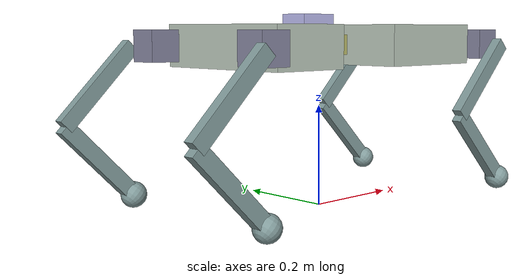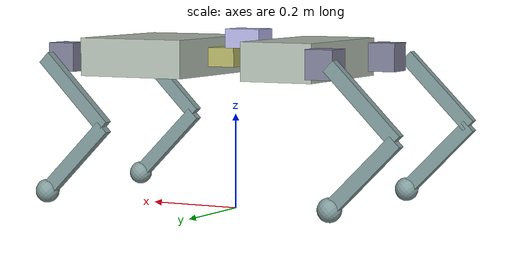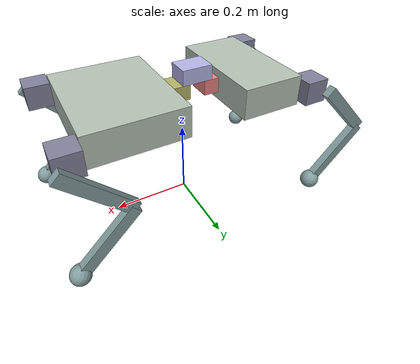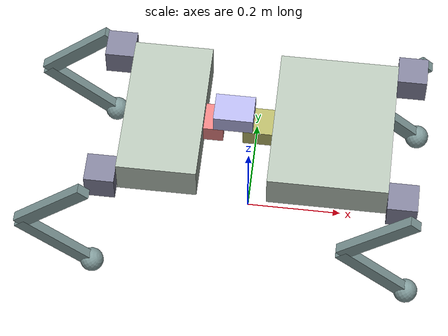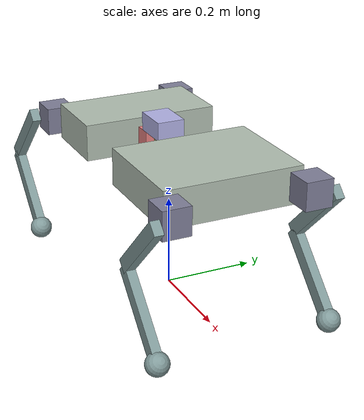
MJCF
<mujoco model="Stray">
  <compiler inertiafromgeom="false" angle="degree" eulerseq="xyz" meshdir="../meshes" />
  <size nuser_actuator="1" nuser_sensor="1" />
  <option timestep="0.01" iterations="50" solver="PGS" gravity="0 0 -9.806" />

    <visual>
    <quality shadowsize="32768" numslices="56" />
    <map znear="0.05" />
    </visual>

    <default>
      <joint limited="true" />
      <geom contype="1" conaffinity="1" condim="3" material="collision" friction="0.8 0.5 0.5" solimp="0.95 0.99 0.001 0.1 10.0" />
      <equality solref="0.005 1" />
      <motor ctrllimited="true" />
      <mesh scale="1 1 1" />

      <default class="mesh-import">
          <geom type="mesh" euler="0 60 60" material="cassie" friction="0.8 0.5 0.5" solimp="0.95 0.99 0.001 0.1 10.0" />
      </default>
    </default>

    <asset>
        <texture type="skybox" builtin="gradient" width="128" height="128" rgb1="0.325490196078431   0.003921568627451   0.600000000000000" rgb2="0.500000000000000   0.584313725490196   0.188235294117647" />
        <texture name="plane" type="2d" builtin="checker" rgb1="0.2 0.3 0.5" rgb2="1 1 1" width="128" height="128" />
        <texture name="body" type="2d" builtin="checker" rgb1="0.5 0.5 0.5" rgb2="0.5 0.5 0.5" width="1024" height="1024" />
        <material name="plane" reflectance="0.1" texture="plane" texrepeat="2 2" texuniform="true" />
        <material name="cassie" reflectance="0.3" specular="0.1" emission="0" shininess="0.1" texture="body" texrepeat="300 300" texuniform="true" />
        <material name="collision" rgba="0 1 0 0.1" />
        <hfield name="terrain" nrow="20" ncol="20" size="50 50 0.01 1" />
    </asset>

    <worldbody>

        <light name="temp" mode="fixed" castshadow="false" directional="true" dir="-1 1 -1" active="true" pos="1 -1 9" exponent="10" />
        <body name="front_body" pos="0.0 0 0.32">
            <site name="bodyref" size="0.01" />

            <camera name="track" mode="trackcom" pos="-0.2 -1.7 0.5" xyaxes="1 0 0 0 0.3 1" />

            <inertial pos="0.17511205451695034 9.56554703452455E-06 -0.0020598932147345" mass="3.909" diaginertia="0.048522 0.019088 0.055756" />

            <geom type="box" size="0.12 0.15 0.04" rgba="0.7 0.75 0.7 1" euler="0 0 0" pos="0.17 0 0" />

            <freejoint name='root' />

            <body name="hip_LF" pos='0.32 0.15 0' >
                <inertial pos='-0.003311 -0.000635 3.1e-05' mass='0.696' diaginertia='0.000469246 0.00080749 0.000552929' />
                <geom type='box' size='0.03 0.03 0.03' rgba='0.5 0.5 0.6 1' />
                <joint name='hip_LF' type='hinge' pos='0 0 0' axis='1 0 0' range='-60 60' ref='0' armature='0.0001' />

                <body name='thigh_LF' pos='0.03 0.04 0' euler='0 135 0'>
                <inertial pos='0.003237 0.022327 -0.027326' mass='1.013' diaginertia='0.001367788 0.005529065 0.005139339' />
                <geom type='box' size='0.1 0.01 0.015' rgba='0.5 0.6 0.6 1' pos='0.1 0 0' />
                <joint name='thigh_LF' type='hinge' pos='0 0 0' axis='0 1 0' range='-60 60' ref='0' armature='0.0001' />

                    <body name='calf_LF' pos='0.2 0 0' euler='0 -90 0'>
                    <inertial pos='0.1 0 0' mass='0.03' diaginertia='0.00002743 0.00010716 0.00008016' />
                    <geom type='box' size='0.1 0.01 0.015' rgba='0.5 0.6 0.6 1' pos='0.1 0 0' />
                    <joint name='calf_LF' type='hinge' pos='0 0 0' axis='0 1 0' range='-60 60' ref='0' armature='0.0001' />

                        <body name='foot_LF' pos='0.2 0 0' euler='0 0 0' >
                        <inertial pos='0 0 0' mass='0.02' diaginertia='0.00000166 0.00000366 0.00000244' />
                        <geom type='sphere' size='0.025' rgba='0.5 0.6 0.6 1' />
                        </body>
                    </body>
                </body>
            </body>

            <body name="hip_RF" pos='0.32 -0.15 0' >
                <inertial pos='-0.003311 -0.000635 3.1e-05' mass='0.696' diaginertia='0.000469246 0.00080749 0.000552929' />
                <geom type='box' size='0.03 0.03 0.03' rgba='0.5 0.5 0.6 1' />
                <joint name='hip_RF' type='hinge' pos='0 0 0' axis='1 0 0' range='-60 60' ref='0' armature='0.0001' />

                <body name='thigh_RF' pos='0.03 -0.04 0' euler='0 135 0'>
                <inertial pos='0.003237 0.022327 -0.027326' mass='1.013' diaginertia='0.001367788 0.005529065 0.005139339' />
                <geom type='box' size='0.1 0.01 0.015' rgba='0.5 0.6 0.6 1' pos='0.1 0 0'  />
                <joint name='thigh_RF' type='hinge' pos='0 0 0' axis='0 1 0' range='-60 60' ref='0' armature='0.0001' />

                    <body name='calf_RF' pos='0.2 0 0' euler='0 -90 0'>
                    <inertial pos='0.1 0 0' mass='0.03' diaginertia='0.00002743 0.00010716 0.00008016' />
                    <geom type='box' size='0.1 0.01 0.015' rgba='0.5 0.6 0.6 1' pos='0.1 0 0' />
                    <joint name='calf_RF' type='hinge' pos='0 0 0' axis='0 1 0' range='-60 60' ref='0' armature='0.0001' />

                        <body name='foot_RF' pos='0.2 0 0' euler='0 0 0' >
                        <inertial pos='0 0 0' mass='0.02' diaginertia='0.00000166 0.00000366 0.00000244' />
                        <geom type='sphere' size='0.025' rgba='0.5 0.6 0.6 1' />
                        </body>
                    </body>
                </body>
            </body>

            <body name='spine_roll' pos='0.02 0 0' >
            <inertial pos='-0.003311 -0.000635 3.1e-05' mass='0.696' diaginertia='0.000469246 0.00080749 0.000552929' />
            <geom type='box' size='0.03 0.03 0.02' rgba='0.7 0.7 0.4 1' />
            <joint name='spine_roll' type='hinge' pos='0 0 0' axis='1 0 0' range='-45 45' ref='0' armature='0.0001' />

                <body name='spine_yaw' pos='-0.05 0 0.04' >
                <inertial pos='-0.003311 -0.000635 3.1e-05' mass='0.696' diaginertia='0.00080749 0.000552929 0.000469246' />
                <geom type='box' size='0.04 0.03 0.02' rgba='0.7 0.7 0.9 1' />
                <joint name='spine_yaw' type='hinge' pos='0.03 0 0' axis='0 0 1' range='-45 45' ref='0' armature='0.0001' />

                    <body name='spine_pitch' pos='-0.04 0 -0.04' >
                    <inertial pos='-0.003311 -0.000635 3.1e-05' mass='0.696' diaginertia='0.000552929 0.000469246 0.00080749' />
                    <geom type='box' size='0.02 0.03 0.02' rgba='0.9 0.5 0.5 1' />
                    <joint name='spine_pitch' type='hinge' pos='0.02 0 0.02' axis='0 1 0' range='-45 45' ref='0' armature='0.0001' />

                        <body name='hind_body' pos='-0.1 0 0' >
                        <geom type="box" size="0.08 0.15 0.04" rgba="0.7 0.75 0.7 1" euler="0 0 0" pos="0 0 0" />
                        <inertial pos="0.17511205451695034 9.56554703452455E-06 -0.0020598932147345" mass="3.909" diaginertia="0.048522 0.019088 0.055756" />

                            <body name='hip_LH' pos='-0.11 0.15 0' >
                            <inertial pos='-0.003311 -0.000635 3.1e-05' mass='0.696' diaginertia='0.000469246 0.00080749 0.000552929' />
                            <geom type='box' size='0.03 0.03 0.03' rgba='0.5 0.5 0.6 1' />
                            <joint name='hip_LH' type='hinge' pos='0 0 0' axis='1 0 0' range='-60 60' ref='0' armature='0.0001' />

                                <body name='thigh_LH' pos='-0.03 0.04 0' euler='0 135 0'>
                                <inertial pos='0.003237 0.022327 -0.027326' mass='1.013' diaginertia='0.001367788 0.005529065 0.005139339' />
                                <geom type='box' size='0.1 0.01 0.015' rgba='0.5 0.6 0.6 1' pos='0.1 0 0' />
                                <joint name='thigh_LH' type='hinge' pos='0 0 0' axis='0 1 0' range='-60 60' ref='0' armature='0.0001' />

                                    <body name='calf_LH' pos='0.2 0 0' euler='0 -90 0'>
                                    <inertial pos='0.1 0 0' mass='0.03' diaginertia='0.00002743 0.00010716 0.00008016' />
                                    <geom type='box' size='0.1 0.01 0.015' rgba='0.5 0.6 0.6 1' pos='0.1 0 0' />
                                    <joint name='calf_LH' type='hinge' pos='0 0 0' axis='0 1 0' range='-60 60' ref='0' armature='0.0001' />

                                        <body name='foot_LH' pos='0.2 0 0' euler='0 0 0' >
                                        <inertial pos='0 0 0' mass='0.02' diaginertia='0.00000166 0.00000366 0.00000244' />
                                        <geom type='sphere' size='0.025' rgba='0.5 0.6 0.6 1' />
                                        </body>
                                    </body>
                                </body>
                            </body>

                            <body name='hip_RH' pos='-0.11 -0.15 0' >
                            <inertial pos='-0.003311 -0.000635 3.1e-05' mass='0.696' diaginertia='0.000469246 0.00080749 0.000552929' />
                            <geom type='box' size='0.03 0.03 0.03' rgba='0.5 0.5 0.6 1' />
                            <joint name='hip_RH' type='hinge' pos='0 0 0' axis='1 0 0' range='-60 60' ref='0' armature='0.0001' />

                                <body name='thigh_RH' pos='-0.03 -0.04 0' euler='0 135 0'>
                                <inertial pos='0.003237 0.022327 -0.027326' mass='1.013' diaginertia='0.001367788 0.005529065 0.005139339' />
                                <geom type='box' size='0.1 0.01 0.015' rgba='0.5 0.6 0.6 1' pos='0.1 0 0' />
                                <joint name='thigh_RH' type='hinge' pos='0 0 0' axis='0 1 0' range='-60 60' ref='0' armature='0.0001' />

                                    <body name='calf_RH' pos='0.2 0 0' euler='0 -90 0'>
                                    <inertial pos='0.1 0 0' mass='0.03' diaginertia='0.00002743 0.00010716 0.00008016' />
                                    <geom type='box' size='0.1 0.01 0.015' rgba='0.5 0.6 0.6 1' pos='0.1 0 0' />
                                    <joint name='calf_RH' type='hinge' pos='0 0 0' axis='0 1 0' range='-60 60' ref='0' armature='0.0001' />

                                        <body name='foot_RH' pos='0.2 0 0' euler='0 0 0' >
                                        <inertial pos='0 0 0' mass='0.02' diaginertia='0.00000166 0.00000366 0.00000244' />
                                        <geom type='sphere' size='0.025' rgba='0.5 0.6 0.6 1' />
                                        </body>
                                    </body>
                                </body>
                            </body>
                        </body>
                    </body>
                </body>
            </body>
        </body>
    </worldbody>

    <actuator>

        <motor gear="1" joint="hip_LF" name="hip_LF" ctrllimited="true" ctrlrange="-30 30" />
        <motor gear="1" joint="thigh_LF" name="thigh_LF" ctrllimited="true" ctrlrange="-30 30" />
        <motor gear="1" joint="calf_LF" name="calf_LF" ctrllimited="true" ctrlrange="-30 30" />
        <motor gear="1" joint="hip_RF" name="hip_RF" ctrllimited="true" ctrlrange="-30 30" />
        <motor gear="1" joint="thigh_RF" name="thigh_RF" ctrllimited="true" ctrlrange="-30 30" />
        <motor gear="1" joint="calf_RF" name="calf_RF" ctrllimited="true" ctrlrange="-30 30" />
        <motor gear="1" joint="spine_roll" name="spine_roll" ctrllimited="true" ctrlrange="-30 30" />
        <motor gear="1" joint="spine_yaw" name="spine_yaw" ctrllimited="true" ctrlrange="-30 30" />
        <motor gear="1" joint="spine_pitch" name="spine_pitch" ctrllimited="true" ctrlrange="-30 30" />
        <motor gear="1" joint="hip_LH" name="hip_LH" ctrllimited="true" ctrlrange="-30 30" />
        <motor gear="1" joint="thigh_LH" name="thigh_LH" ctrllimited="true" ctrlrange="-30 30" />
        <motor gear="1" joint="calf_LH" name="calf_LH" ctrllimited="true" ctrlrange="-30 30" />
        <motor gear="1" joint="hip_RH" name="hip_RH" ctrllimited="true" ctrlrange="-30 30" />
        <motor gear="1" joint="thigh_RH" name="thigh_RH" ctrllimited="true" ctrlrange="-30 30" />
        <motor gear="1" joint="calf_RH" name="calf_RH" ctrllimited="true" ctrlrange="-30 30" />
    </actuator>

</mujoco>
